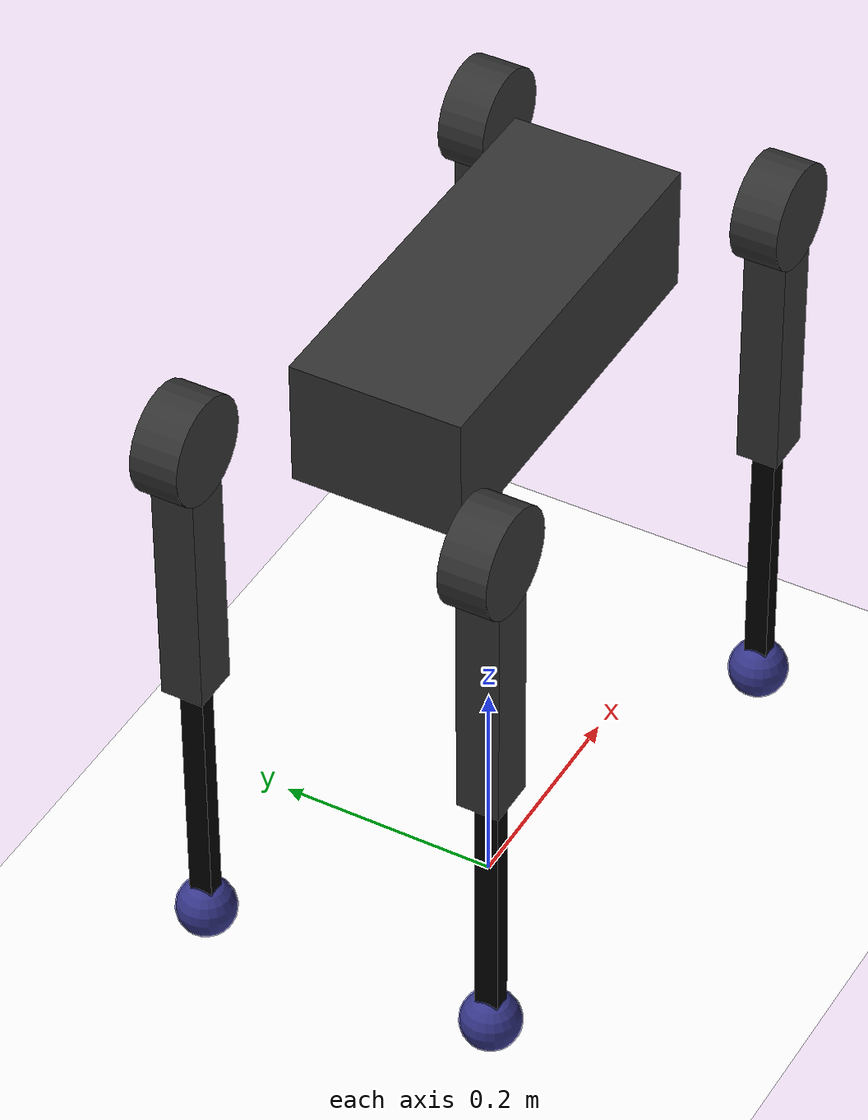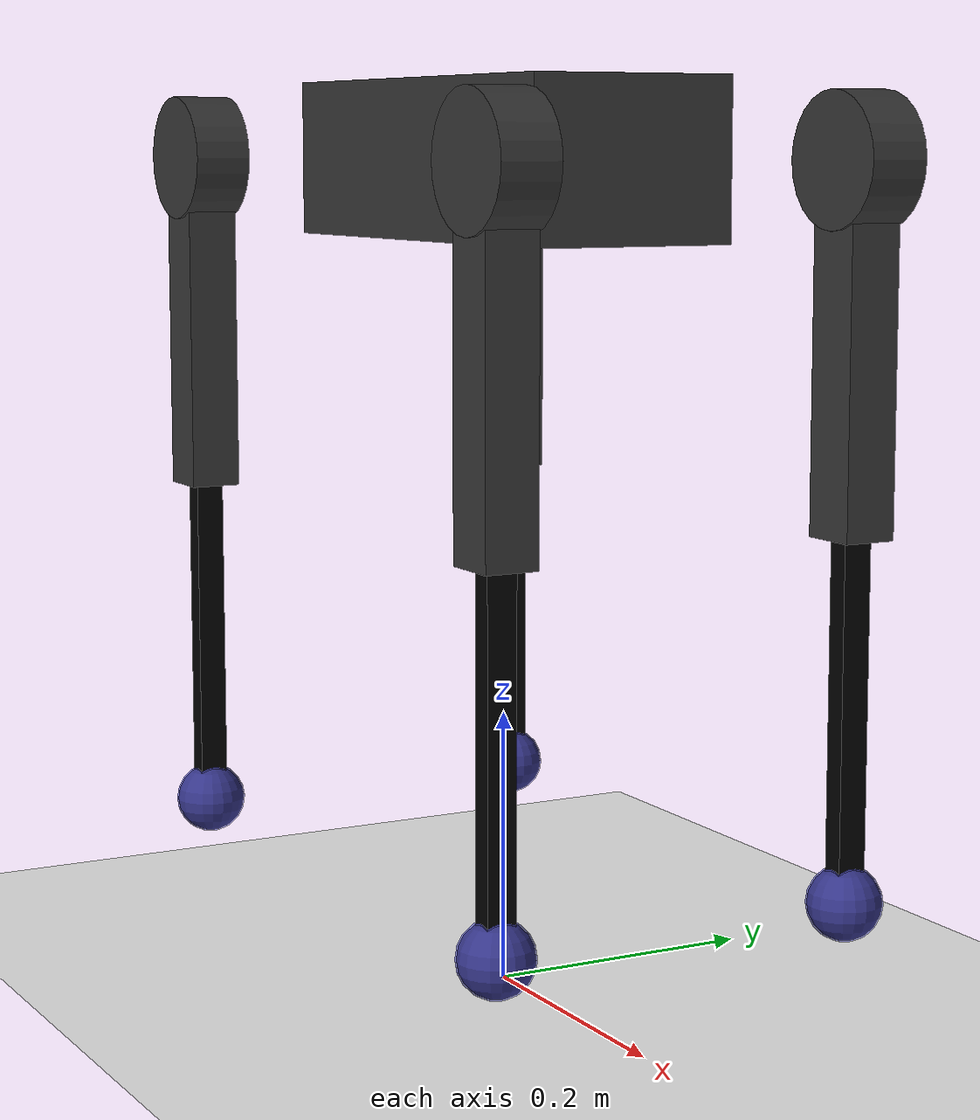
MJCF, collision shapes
<mujoco model="aliengo">
    <compiler angle="radian" meshdir="meshes" autolimits="true"/>
    <size njmax="5000" nconmax="10000" />

    <default>
        <light castshadow="false" diffuse="1 1 1" />
        <camera fovy="60" />
        <default class="visual">
            <geom contype="0" conaffinity="0" group="1" type="mesh" rgba="0.9 0.9 0.9 1.0" />
        </default>
        <joint damping="0.1" armature="0.01" frictionloss="0.1" />
        <geom contype="1" conaffinity="1" friction="1.0 0.8 0.8" rgba="0.5 0.6 0.7 0" margin="0.001"
            group="0" />
    </default>
    <visual>
        <rgba com="0.502 1.0 0 1.0" contactpoint="0.5 0.1 0.8 0.4" contactforce="0.2 0.98 0.2 0.8" />
        <scale com="0.2" forcewidth="0.05" contactwidth="0.10" contactheight="0.04" />
    </visual>

    <asset>
        <mesh name="trunk" file="trunk.stl" />
        <mesh name="hip" file="hip.stl" />
        <mesh name="thigh_mirror" file="thigh_mirror.stl" />
        <mesh name="calf" file="calf.stl" />
        <mesh name="thigh" file="thigh.stl" />
        <hfield name="height_map" nrow="120" ncol="300" size="3 1.2 3 0.1" />
    </asset>

    <asset>
        <texture type="skybox" builtin="gradient" width="512" height="512" rgb1="0.6 0.6 0.6"
            rgb2="0.6 0.6 0.6" />
        <texture name="texplane" type="2d" builtin="checker" rgb1=".4 .4 .4" rgb2=".6 .6 .6"
            width="512"
            height="512" mark="cross" markrgb="0 0 0" />
        <material name="plane" reflectance='0' texture="texplane" texrepeat="1 1"
            texuniform="true"
            rgba=".7 .7 .7 1" />
    </asset>
    <option timestep="0.0005" />

    <worldbody>
        <geom name="floor" pos="0 0 0" euler="0 0 0" size="0 0 1" type="plane" material="plane"
            condim="3" conaffinity="1" contype="1" rgba="1 1 1 1" />
        <light directional="true" diffuse=".8 .8 .8" pos="0 0 10" dir="0 0 -10" />
        <camera name="track" mode="trackcom" pos="0 -2.3 1.6" xyaxes="1 0 0 0 0.707 0.707" />

        <body name="trunk" pos="0 0 0.6">
            <inertial pos="0.00846406 0.00404455 -0.000762916"
                quat="-3.12625e-05 0.708321 0.00247254 0.705886" mass="9.042"
                diaginertia="0.174706 0.161175 0.033357" />
            <joint type="free" damping="0" />
            <geom class="visual" mesh="trunk" />
            <geom size="0.18 0.075 0.056" type="box" rgba="0.2 0.2 0.2 0" />
            <geom size="0.0005 0.0005 0.0005" type="box" rgba="0.8 0 0 0" />
            <site name="imu" pos="0 0 0" />

            <body name="FL_hip" pos="0.2399 0.051 0">
                <inertial pos="-0.022191 0.015144 -1.5e-05"
                    quat="-0.0135493 0.706835 0.0117635 0.707151" mass="1.993"
                    diaginertia="0.00558695 0.00491009 0.00290132" />
                <joint name="FL_hip_joint" pos="0 0 0" axis="1 0 0" limited="true"
                    range="-1.22173 1.22173" />
                <geom class="visual" mesh="hip" />
                <geom size="0.046 0.0209" pos="0 0.083 0" quat="0.707107 0.707107 0 0"
                    type="cylinder" rgba="0.2 0.2 0.2 0" />
                <body name="FL_thigh" pos="0 0.083 0">
                    <inertial pos="-0.005607 -0.003877 -0.048199"
                        quat="0.717987 -0.031246 -0.0335669 0.694544" mass="0.639"
                        diaginertia="0.0058474 0.00571186 0.000324584" />
                    <joint name="FL_thigh_joint" pos="0 0 0" axis="0 1 0" />
                    <geom class="visual" mesh="thigh" />
                    <geom size="0.125 0.0187 0.0215" pos="0 0 -0.125" quat="0.707107 0 0.707107 0"
                        type="box" rgba="0.2 0.2 0.2 0" />
                    <body name="FL_calf" pos="0 0 -0.25">
                        <inertial pos="0.00215606 4.88427e-05 -0.166671"
                            quat="0.707462 0.00517582 0.00535172 0.706712" mass="0.267"
                            diaginertia="0.00690975 0.00689712 5.4885e-05" />
                        <joint name="FL_calf_joint" pos="0 0 0" axis="0 1 0" limited="true"
                            range="-2.77507 -0.645772" />
                        <geom type="mesh" contype="0" conaffinity="0" group="1" rgba="0 0 0 0.8"
                            mesh="calf" />
                        <geom size="0.125 0.0104 0.008" pos="0 0 -0.125"
                            quat="0.707107 0 0.707107 0" type="box" rgba="0 0 0 0" />
                        <geom name="fl_foot" size="0.0165" pos="0 0 -0.25" contype="0"
                            conaffinity="0" group="1" rgba="0 0 0 1" />
                        <geom size="0.0255" pos="0 0 -0.25" rgba="0 0 0 1" />
                        <site name="fl_tc" size="0.0265" pos="0 0 -0.25" rgba="0.4 0.4 0.95 0.6" />
                    </body>
                </body>
            </body>

            <body name="FR_hip" pos="0.2399 -0.051 0">
                <inertial pos="-0.022191 -0.015144 -1.5e-05"
                    quat="0.0135493 0.706835 -0.0117635 0.707151" mass="1.993"
                    diaginertia="0.00558695 0.00491009 0.00290132" />
                <joint name="FR_hip_joint" pos="0 0 0" axis="1 0 0" limited="true"
                    range="-1.22173 1.22173" />
                <geom quat="0 1 0 0" class="visual" mesh="hip" />
                <geom size="0.046 0.0209" pos="0 -0.083 0" quat="0.707107 0.707107 0 0"
                    type="cylinder" rgba="0.2 0.2 0.2 0" />
                <body name="FR_thigh" pos="0 -0.083 0">
                    <inertial pos="-0.005607 0.003877 -0.048199"
                        quat="0.694544 -0.0335669 -0.031246 0.717987" mass="0.639"
                        diaginertia="0.0058474 0.00571186 0.000324584" />
                    <joint name="FR_thigh_joint" pos="0 0 0" axis="0 1 0" />
                    <geom class="visual" mesh="thigh_mirror" />
                    <geom size="0.125 0.0187 0.0215" pos="0 0 -0.125" quat="0.707107 0 0.707107 0"
                        type="box" rgba="0.2 0.2 0.2 0" />
                    <body name="FR_calf" pos="0 0 -0.25">
                        <inertial pos="0.00215606 4.88427e-05 -0.166671"
                            quat="0.707462 0.00517582 0.00535172 0.706712" mass="0.267"
                            diaginertia="0.00690975 0.00689712 5.4885e-05" />
                        <joint name="FR_calf_joint" pos="0 0 0" axis="0 1 0" limited="true"
                            range="-2.77507 -0.645772" />
                        <geom type="mesh" contype="0" conaffinity="0" group="1" rgba="0 0 0 0.8"
                            mesh="calf" />
                        <geom size="0.125 0.0104 0.008" pos="0 0 -0.125"
                            quat="0.707107 0 0.707107 0" type="box" rgba="0 0 0 0" />
                        <geom name="fr_foot" size="0.0165" pos="0 0 -0.25" contype="0"
                            conaffinity="0" group="1" rgba="0 0 0 1" />
                        <geom size="0.0255" pos="0 0 -0.25" rgba="0 0 0 1" />
                        <site name="fr_tc" size="0.0265" pos="0 0 -0.25" rgba="0.4 0.4 0.95 0.6" />
                    </body>
                </body>
            </body>

            <body name="RL_hip" pos="-0.2399 0.051 0">
                <inertial pos="0.022191 0.015144 -1.5e-05"
                    quat="0.0117635 0.707151 -0.0135493 0.706835" mass="1.993"
                    diaginertia="0.00558695 0.00491009 0.00290132" />
                <joint name="RL_hip_joint" pos="0 0 0" axis="1 0 0" limited="true"
                    range="-1.22173 1.22173" />
                <geom quat="0 0 1 0" class="visual" mesh="hip" />
                <geom size="0.046 0.0209" pos="0 0.083 0" quat="0.707107 0.707107 0 0"
                    type="cylinder" rgba="0.2 0.2 0.2 0" />
                <body name="RL_thigh" pos="0 0.083 0">
                    <inertial pos="-0.005607 -0.003877 -0.048199"
                        quat="0.717987 -0.031246 -0.0335669 0.694544" mass="0.639"
                        diaginertia="0.0058474 0.00571186 0.000324584" />
                    <joint name="RL_thigh_joint" pos="0 0 0" axis="0 1 0" />
                    <geom class="visual" mesh="thigh" />
                    <geom size="0.125 0.0187 0.0215" pos="0 0 -0.125" quat="0.707107 0 0.707107 0"
                        type="box" rgba="0.2 0.2 0.2 0" />
                    <body name="RL_calf" pos="0 0 -0.25">
                        <inertial pos="0.00215606 4.88427e-05 -0.166671"
                            quat="0.707462 0.00517582 0.00535172 0.706712" mass="0.267"
                            diaginertia="0.00690975 0.00689712 5.4885e-05" />
                        <joint name="RL_calf_joint" pos="0 0 0" axis="0 1 0" limited="true"
                            range="-2.77507 -0.645772" />
                        <geom type="mesh" contype="0" conaffinity="0" group="1" rgba="0 0 0 0.8"
                            mesh="calf" />
                        <geom size="0.125 0.0104 0.008" pos="0 0 -0.125"
                            quat="0.707107 0 0.707107 0" type="box" rgba="0 0 0 0" />
                        <geom name="rl_foot" size="0.0165" pos="0 0 -0.25" contype="0"
                            conaffinity="0" group="1" rgba="0 0 0 1" />
                        <geom size="0.0255" pos="0 0 -0.25" rgba="0 0 0 1" />
                        <site name="rl_tc" size="0.0265" pos="0 0 -0.25" rgba="0.4 0.4 0.95 0.6" />
                    </body>
                </body>
            </body>

            <body name="RR_hip" pos="-0.2399 -0.051 0">
                <inertial pos="0.022191 -0.015144 -1.5e-05"
                    quat="-0.0117635 0.707151 0.0135493 0.706835" mass="1.993"
                    diaginertia="0.00558695 0.00491009 0.00290132" />
                <joint name="RR_hip_joint" pos="0 0 0" axis="1 0 0" limited="true"
                    range="-1.22173 1.22173" />
                <geom quat="0 0 0 -1" class="visual" mesh="hip" />
                <geom size="0.046 0.0209" pos="0 -0.083 0" quat="0.707107 0.707107 0 0"
                    type="cylinder" rgba="0.2 0.2 0.2 0" />
                <body name="RR_thigh" pos="0 -0.083 0">
                    <inertial pos="-0.005607 0.003877 -0.048199"
                        quat="0.694544 -0.0335669 -0.031246 0.717987" mass="0.639"
                        diaginertia="0.0058474 0.00571186 0.000324584" />
                    <joint name="RR_thigh_joint" pos="0 0 0" axis="0 1 0" />
                    <geom class="visual" mesh="thigh_mirror" />
                    <geom size="0.125 0.0187 0.0215" pos="0 0 -0.125" quat="0.707107 0 0.707107 0"
                        type="box" rgba="0.2 0.2 0.2 0" />
                    <body name="RR_calf" pos="0 0 -0.25">
                        <inertial pos="0.00215606 4.88427e-05 -0.166671"
                            quat="0.707462 0.00517582 0.00535172 0.706712" mass="0.267"
                            diaginertia="0.00690975 0.00689712 5.4885e-05" />
                        <joint name="RR_calf_joint" pos="0 0 0" axis="0 1 0" limited="true"
                            range="-2.77507 -0.645772" />
                        <geom type="mesh" contype="0" conaffinity="0" group="1" rgba="0 0 0 0.8"
                            mesh="calf" />
                        <geom size="0.125 0.0104 0.008" pos="0 0 -0.125"
                            quat="0.707107 0 0.707107 0" type="box" rgba="0 0 0 0" />
                        <geom name="rr_foot" size="0.0165" pos="0 0 -0.25" contype="0"
                            conaffinity="0" group="1" rgba="0 0 0 1" />
                        <geom size="0.0255" pos="0 0 -0.25" rgba="0 0 0 1" />
                        <site name="rr_tc" size="0.0265" pos="0 0 -0.25" rgba="0.4 0.4 0.95 0.6" />
                    </body>
                </body>
            </body>
        </body>
    </worldbody>

    <actuator>
        <motor name="FL_hip_joint" gear="1" joint="FL_hip_joint" />
        <motor name="FL_thigh_joint" gear="1" joint="FL_thigh_joint" />
        <motor name="FL_calf_joint" gear="1" joint="FL_calf_joint" />
        <motor name="FR_hip_joint" gear="1" joint="FR_hip_joint" />
        <motor name="FR_thigh_joint" gear="1" joint="FR_thigh_joint" />
        <motor name="FR_calf_joint" gear="1" joint="FR_calf_joint" />
        <motor name="RL_hip_joint" gear="1" joint="RL_hip_joint" />
        <motor name="RL_thigh_joint" gear="1" joint="RL_thigh_joint" />
        <motor name="RL_calf_joint" gear="1" joint="RL_calf_joint" />
        <motor name="RR_hip_joint" gear="1" joint="RR_hip_joint" />
        <motor name="RR_thigh_joint" gear="1" joint="RR_thigh_joint" />
        <motor name="RR_calf_joint" gear="1" joint="RR_calf_joint" />
    </actuator>

    <sensor>
        <framequat name="Body_Quat" objtype="site" objname="imu" />
        <gyro name="Body_Gyro" site="imu" />
        <accelerometer name="Body_Acc" site="imu" />

        <jointpos name="FL_hip_pos" joint="FL_hip_joint" />
        <jointpos name="FL_thigh_pos" joint="FL_thigh_joint" />
        <jointpos name="FL_calf_pos" joint="FL_calf_joint" />
        <jointpos name="FR_hip_pos" joint="FR_hip_joint" />
        <jointpos name="FR_thigh_pos" joint="FR_thigh_joint" />
        <jointpos name="FR_calf_pos" joint="FR_calf_joint" />
        <jointpos name="RL_hip_pos" joint="RL_hip_joint" />
        <jointpos name="RL_thigh_pos" joint="RL_thigh_joint" />
        <jointpos name="RL_calf_pos" joint="RL_calf_joint" />
        <jointpos name="RR_hip_pos" joint="RR_hip_joint" />
        <jointpos name="RR_thigh_pos" joint="RR_thigh_joint" />
        <jointpos name="RR_calf_pos" joint="RR_calf_joint" />

        <jointvel name="FL_hip_vel" joint="FL_hip_joint" />
        <jointvel name="FL_thigh_vel" joint="FL_thigh_joint" />
        <jointvel name="FL_calf_vel" joint="FL_calf_joint" />
        <jointvel name="FR_hip_vel" joint="FR_hip_joint" />
        <jointvel name="FR_thigh_vel" joint="FR_thigh_joint" />
        <jointvel name="FR_calf_vel" joint="FR_calf_joint" />
        <jointvel name="RL_hip_vel" joint="RL_hip_joint" />
        <jointvel name="RL_thigh_vel" joint="RL_thigh_joint" />
        <jointvel name="RL_calf_vel" joint="RL_calf_joint" />
        <jointvel name="RR_hip_vel" joint="RR_hip_joint" />
        <jointvel name="RR_thigh_vel" joint="RR_thigh_joint" />
        <jointvel name="RR_calf_vel" joint="RR_calf_joint" />

        <touch name="fl_touch" site="fl_tc" />
        <touch name="fr_touch" site="fr_tc" />
        <touch name="rl_touch" site="rl_tc" />
        <touch name="rr_touch" site="rr_tc" />
    </sensor>

</mujoco>
